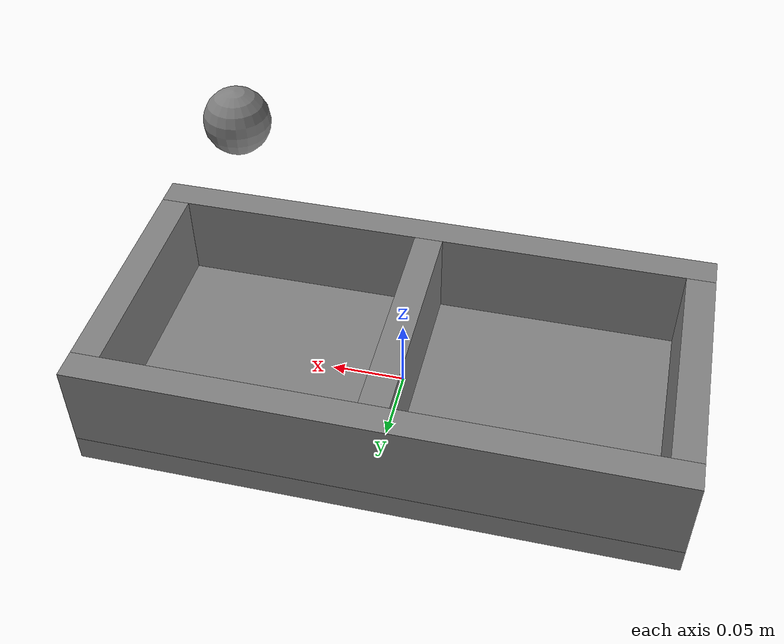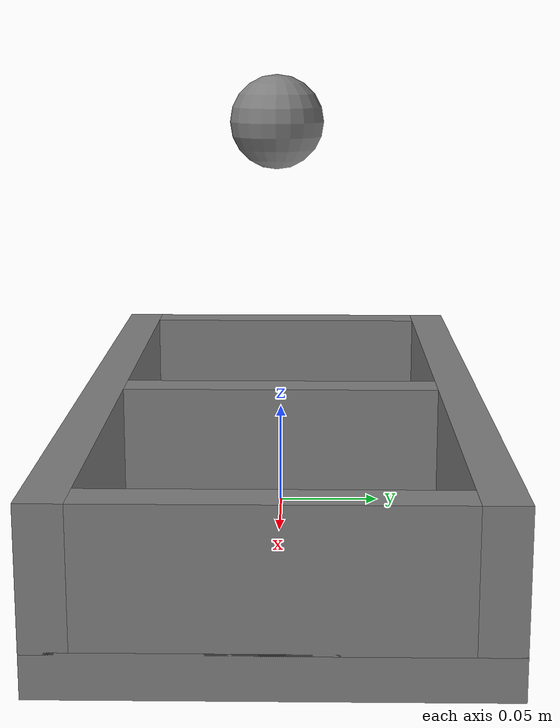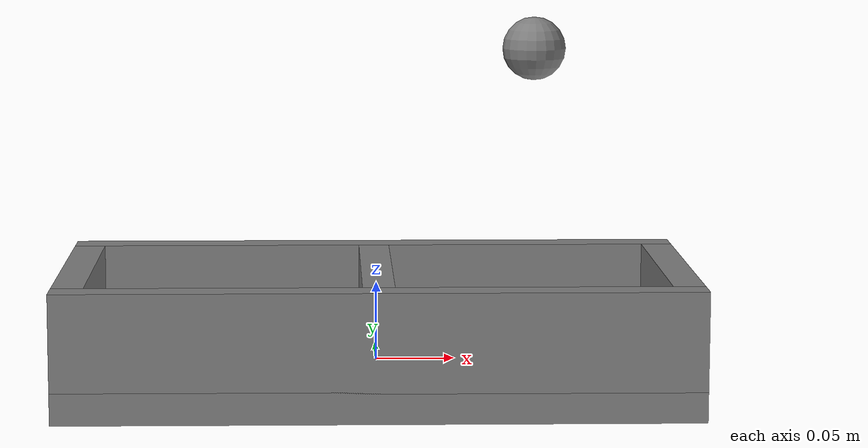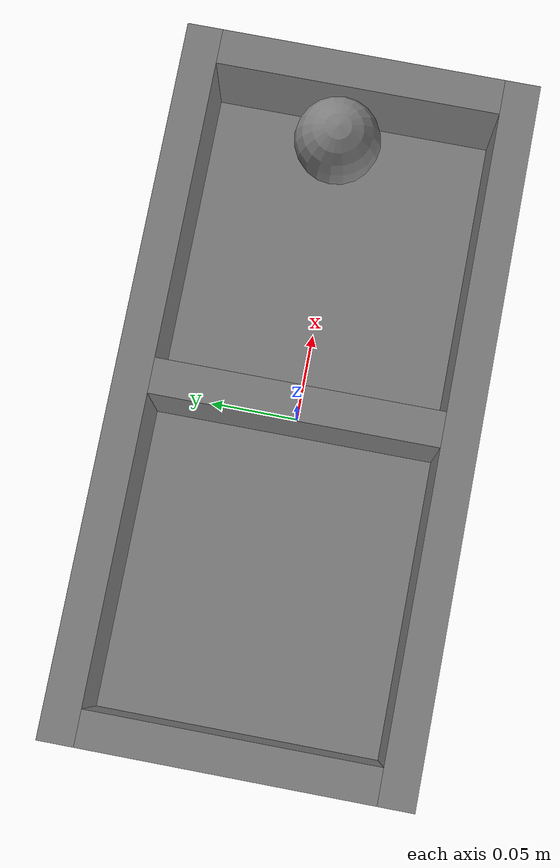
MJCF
<mujoco model="Active adhesion example">
  <!--
    Adding some fluid viscosity to prevent the hanging sphere from jiggling too much.
  -->
  <option viscosity="1"/>

  <size memory="10M"/>

  <visual>
    <headlight diffuse=".2 .2 .2"/>
  </visual>

  <default>
    <joint damping="100"/>
    <geom type="box" friction=".5"/>

  </default>

  <worldbody>
    <light pos="0.4 -.15 .6" dir="-1 .5 -1" diffuse=".7 .7 .7"/>
    <light pos="-.4 -.15 .6" dir="1 .5 -1" diffuse=".7 .7 .7"/>

    <body name="two crates">
      <joint name="conveyor" type="hinge" axis="0 1 0"/>
      <geom size=".2 .1 .01" pos="0 0 -.01"/>
      <geom size=".01 .08 .031" pos="-.19 0 .03" />
      <geom size=".01 .08 .031" pos="0  0 .03" />
      <geom size=".01 .08 .031" pos="0.19 0 .03" />
      <geom size="0.2 .01 .031" pos="0 -.09 .03" />
      <geom size="0.2 .01 .031" pos="0 0.09 .03" />
    </body>

    <body name="sphere" pos=".1 0 .2" >
      <freejoint/>
      <geom type="sphere" size=".02"  margin=".03" gap=".03"/>
    </body>

  </worldbody>

  <actuator>
    <position name="conveyor" joint="conveyor" ctrlrange="-1.7 1.7" ctrllimited="true" kp="1400"/>
  </actuator>

</mujoco>
